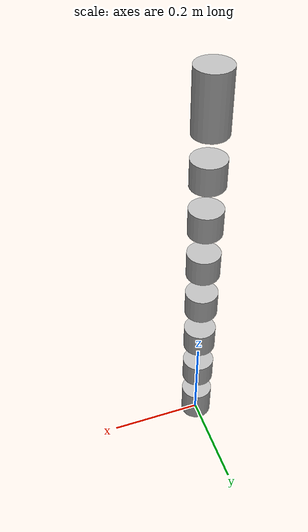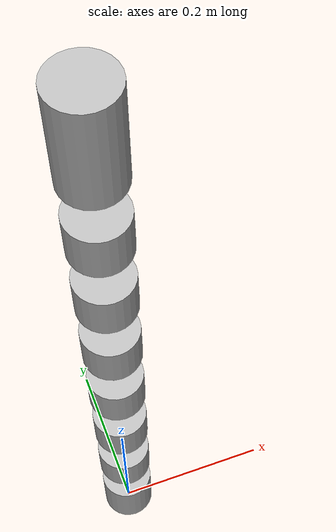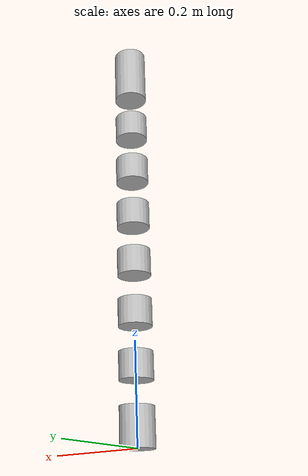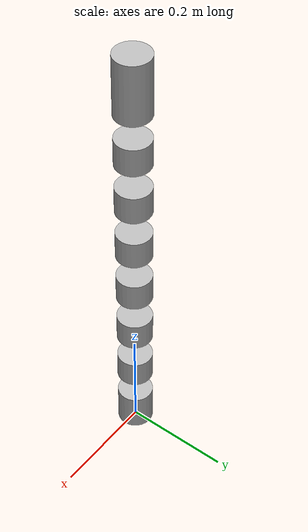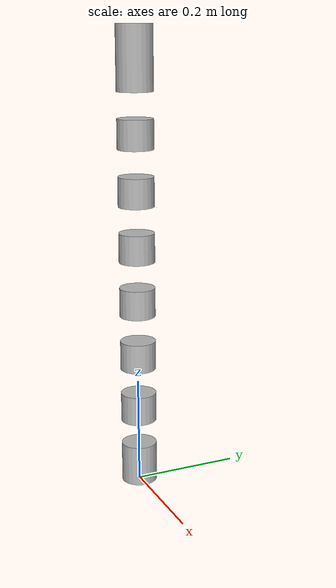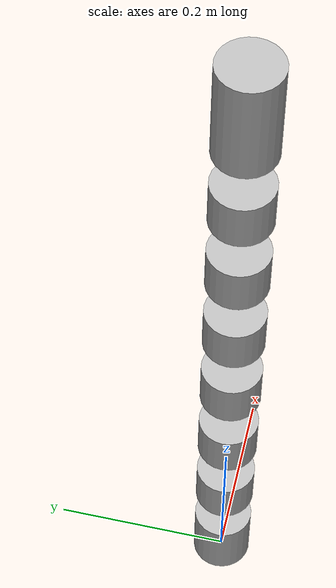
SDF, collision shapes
<?xml version="1.0"?>
<sdf version="1.5">
	<model name="snake">
		<!--> ************ Base Link ************ <-->
		<link name="base_link">
			<pose>0 0 0.03825 0 0 0</pose>
			<inertial>
				<mass>0.095875</mass>
				<inertia>
					<ixx>0.00021427111</ixx>
					<iyy>0.00021427111</iyy>
					<izz>0.000054</izz>
					<ixy>0</ixy>
					<ixz>0</ixz>
					<iyz>0</iyz>
				</inertia>
			</inertial>
			<collision name="base_link_collision">
				<geometry>
					<cylinder>
						<radius>0.0335</radius>
						<length>0.0765</length>
					</cylinder>
				</geometry>
			</collision>
			<visual name="base_link_visual">
				<pose>0 -0.001381485 0.0025 0 0 0</pose>
				<geometry>
					<mesh>
						<uri>model://snake/meshes/head_ori.dae</uri>
					</mesh>
				</geometry>
			</visual>
		</link>

		<!--> ************ Link 01 ************ <-->
		<link name="link_1">
			<pose>0 0 0.151 0 0 0</pose>
			<inertial>
				<mass>0.093195</mass>
				<inertia>
					<ixx>0.0001378755</ixx>
					<iyy>0.0001378755</iyy>
					<izz>0.000052</izz>
					<ixy>0</ixy>
					<ixz>0</ixz>
					<iyz>0</iyz>
				</inertia>
			</inertial>
			<collision name="link_1_collision">
				<geometry>
					<cylinder>
						<radius>0.0335</radius>
						<length>0.055</length>
					</cylinder>
				</geometry>
			</collision>
			<visual name="link_1_visual">
				<pose>0.001381485 0 0.0125 0 0 0</pose>
				<geometry>
					<mesh>
						<uri>model://snake/meshes/module_ori.dae</uri>
					</mesh>
				</geometry>
			</visual>
		</link>

		<!--> ************ Joint 01 [link 01] ************ <-->
		<joint type="revolute" name="revolute_1">
			<pose>0 0 -0.05 0 0 0</pose>
			<parent>base_link</parent>
			<child>link_1</child>
			<axis>
				<xyz>0 1 0</xyz>
				<limit>
					<lower>-1.309</lower>
					<upper>1.309</upper>
				</limit>
			</axis>
		</joint>

		<!--> ************ Link 02 ************ <-->
		<link name="link_2">
			<pose>0 0 0.2549 0 0 0</pose>
			<inertial>
				<mass>0.093195</mass>
				<inertia>
					<ixx>0.0001378755</ixx>
					<iyy>0.0001378755</iyy>
					<izz>0.000052</izz>
					<ixy>0</ixy>
					<ixz>0</ixz>
					<iyz>0</iyz>
				</inertia>
			</inertial>
			<collision name="link_2_collision">
				<geometry>
					<cylinder>
						<radius>0.0335</radius>
						<length>0.055</length>
					</cylinder>
				</geometry>
			</collision>
			<visual name="link_2_visual">
				<pose>0 -0.001381485 0.0125 0 0 -1.570795</pose>
				<geometry>
					<mesh>
						<uri>model://snake/meshes/module_ori.dae</uri>
					</mesh>
				</geometry>
			</visual>
		</link>

		<!--> ************ Joint 02 [link 02] ************ <-->
		<joint type="revolute" name="revolute_2">
			<pose>0 0 -0.05 0 0 0</pose>
			<parent>link_1</parent>
			<child>link_2</child>
			<axis>
				<xyz>1 0 0</xyz>
				<limit>
					<lower>-1.309</lower>
					<upper>1.309</upper>
				</limit>
			</axis>
		</joint>

		<!--> ************ Link 03 ************ <-->
		<link name="link_3">
			<pose>0 0 0.3588 0 0 0</pose>
			<inertial>
				<mass>0.093195</mass>
				<inertia>
					<ixx>0.0001378755</ixx>
					<iyy>0.0001378755</iyy>
					<izz>0.000052</izz>
					<ixy>0</ixy>
					<ixz>0</ixz>
					<iyz>0</iyz>
				</inertia>
			</inertial>
			<collision name="link_3_collision">
				<geometry>
					<cylinder>
						<radius>0.0335</radius>
						<length>0.055</length>
					</cylinder>
				</geometry>
			</collision>
			<visual name="link_3_visual">
				<pose>-0.001381485 0 0.0125 0 0 3.14159</pose>
				<geometry>
					<mesh>
						<uri>model://snake/meshes/module_ori.dae</uri>
					</mesh>
				</geometry>
			</visual>
		</link>

		<!--> ************ Joint 03 [link 03] ************ <-->
		<joint type="revolute" name="revolute_3">
			<pose>0 0 -0.05 0 0 0</pose>
			<parent>link_2</parent>
			<child>link_3</child>
			<axis>
				<xyz>0 1 0</xyz>
				<limit>
					<lower>-1.309</lower>
					<upper>1.309</upper>
				</limit>
			</axis>
		</joint>

		<!--> ************ Link 04 ************ <-->
		<link name="link_4">
			<pose>0 0 0.4627 0 0 0</pose>
			<inertial>
				<mass>0.093195</mass>
				<inertia>
					<ixx>0.0001378755</ixx>
					<iyy>0.0001378755</iyy>
					<izz>0.000052</izz>
					<ixy>0</ixy>
					<ixz>0</ixz>
					<iyz>0</iyz>
				</inertia>
			</inertial>
			<collision name="link_4_collision">
				<geometry>
					<cylinder>
						<radius>0.0335</radius>
						<length>0.055</length>
					</cylinder>
				</geometry>
			</collision>
			<visual name="link_4_visual">
				<pose>0 0.001381485 0.0125 0 0 1.570795</pose>
				<geometry>
					<mesh>
						<uri>model://snake/meshes/module_ori.dae</uri>
					</mesh>
				</geometry>
			</visual>
		</link>

		<!--> ************ Joint 04 [link 04] ************ <-->
		<joint type="revolute" name="revolute_4">
			<pose>0 0 -0.05 0 0 0</pose>
			<parent>link_3</parent>
			<child>link_4</child>
			<axis>
				<xyz>1 0 0</xyz>
				<limit>
					<lower>-1.309</lower>
					<upper>1.309</upper>
				</limit>
			</axis>
		</joint>

		<!--> ************ Link 05 ************ <-->
		<link name="link_5">
			<pose>0 0 0.5666 0 0 0</pose>
			<inertial>
				<mass>0.093195</mass>
				<inertia>
					<ixx>0.0001378755</ixx>
					<iyy>0.0001378755</iyy>
					<izz>0.000052</izz>
					<ixy>0</ixy>
					<ixz>0</ixz>
					<iyz>0</iyz>
				</inertia>
			</inertial>
			<collision name="link_5_collision">
				<geometry>
					<cylinder>
						<radius>0.0335</radius>
						<length>0.055</length>
					</cylinder>
				</geometry>
			</collision>
			<visual name="link_5_visual">
				<pose>0.001381485 0 0.0125 0 0 0</pose>
				<geometry>
					<mesh>
						<uri>model://snake/meshes/module_ori.dae</uri>
					</mesh>
				</geometry>
			</visual>
		</link>

		<!--> ************ Joint 05 [link 05] ************ <-->
		<joint type="revolute" name="revolute_5">
			<pose>0 0 -0.05 0 0 0</pose>
			<parent>link_4</parent>
			<child>link_5</child>
			<axis>
				<xyz>0 1 0</xyz>
				<limit>
					<lower>-1.309</lower>
					<upper>1.309</upper>
				</limit>
			</axis>
		</joint>

		<!--> ************ Link 06 ************ <-->
		<link name="link_6">
			<pose>0 0 0.6705 0 0 0</pose>
			<inertial>
				<mass>0.093195</mass>
				<inertia>
					<ixx>0.0001378755</ixx>
					<iyy>0.0001378755</iyy>
					<izz>0.000052</izz>
					<ixy>0</ixy>
					<ixz>0</ixz>
					<iyz>0</iyz>
				</inertia>
			</inertial>
			<collision name="link_6_collision">
				<geometry>
					<cylinder>
						<radius>0.0335</radius>
						<length>0.055</length>
					</cylinder>
				</geometry>
			</collision>
			<visual name="link_6_visual">
				<pose>0 -0.001381485 0.0125 0 0 -1.570795</pose>
				<geometry>
					<mesh>
						<uri>model://snake/meshes/module_ori.dae</uri>
					</mesh>
				</geometry>
			</visual>
		</link>

		<!--> ************ Joint 06 [link 06] ************ <-->
		<joint type="revolute" name="revolute_6">
			<pose>0 0 -0.05 0 0 0</pose>
			<parent>link_5</parent>
			<child>link_6</child>
			<axis>
				<xyz>1 0 0</xyz>
				<limit>
					<lower>-1.309</lower>
					<upper>1.309</upper>
				</limit>
			</axis>
		</joint>

		<!--> ************ Tail link ************ <-->
		<link name="tail_link">
			<pose>0 0 0.8034 0 0 0</pose>
			<inertial>
				<mass>0.093195</mass>
				<inertia>
					<ixx>0.0001378755</ixx>
					<iyy>0.0001378755</iyy>
					<izz>0.000052</izz>
					<ixy>0</ixy>
					<ixz>0</ixz>
					<iyz>0</iyz>
				</inertia>
			</inertial>
			<collision name="tail_link_collision">
				<geometry>
					<cylinder>
						<radius>0.0335</radius>
						<length>0.1165</length>
					</cylinder>
				</geometry>
			</collision>
			<visual name="tail_link_visual">
				<pose>0 0.00185 0.0125 0 0 3.14159</pose>
				<geometry>
					<mesh>
						<uri>model://snake/meshes/tail_ori.dae</uri>
					</mesh>
				</geometry>
			</visual>
		</link>

		<!--> ************ Joint Tail [Tail] ************ <-->
		<joint type="revolute" name="tail_revolute">
			<pose>0 0 -0.079 0 0 0</pose>
			<parent>link_6</parent>
			<child>tail_link</child>
			<axis>
				<xyz>0 1 0</xyz>
				<limit>
					<lower>-1.309</lower>
					<upper>1.309</upper>
				</limit>
			</axis>
		</joint>
	</model>
</sdf>
